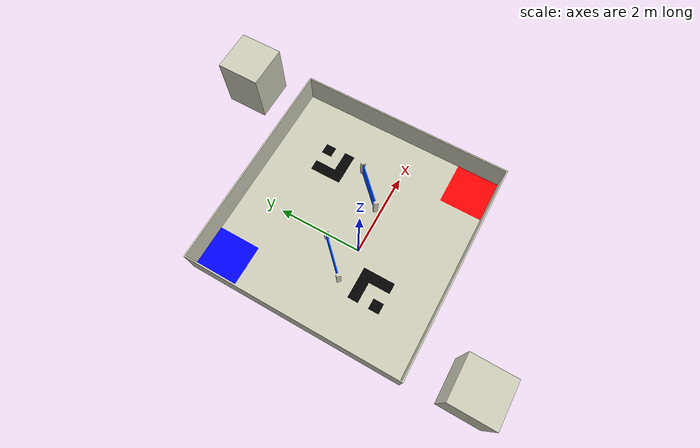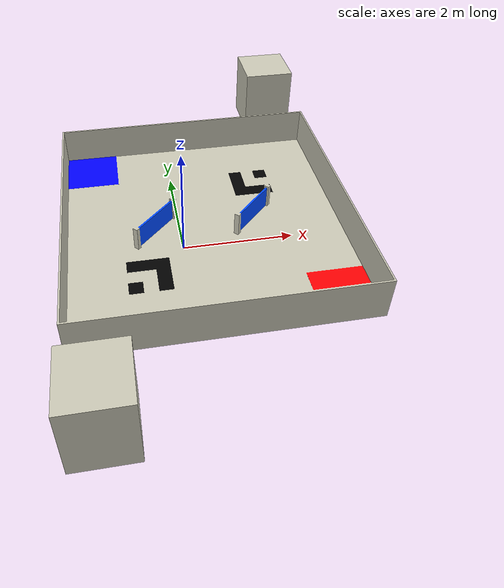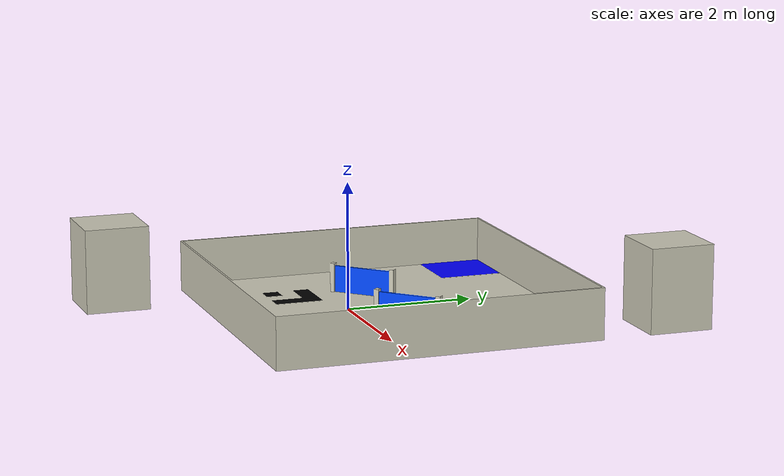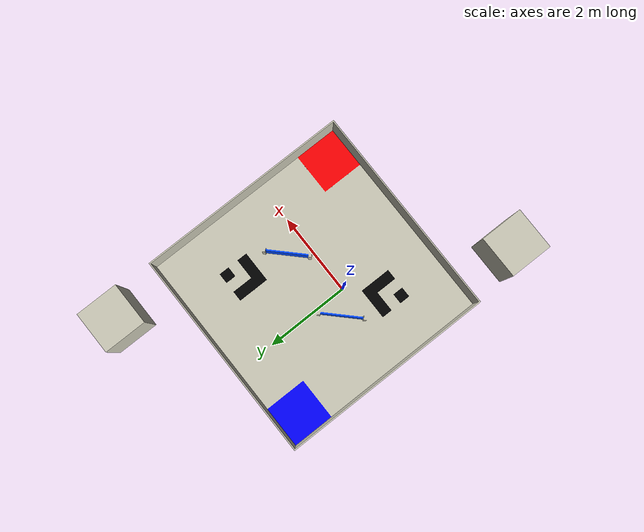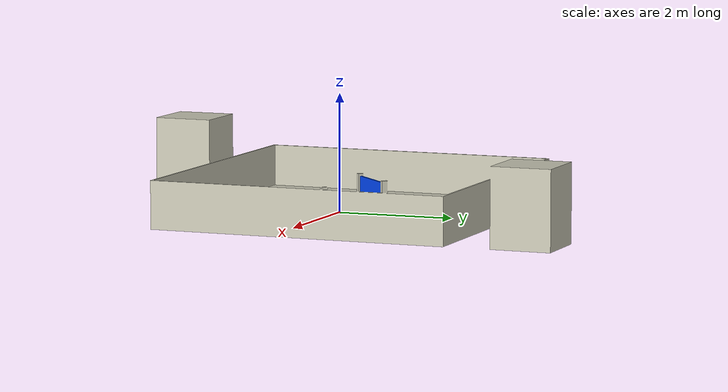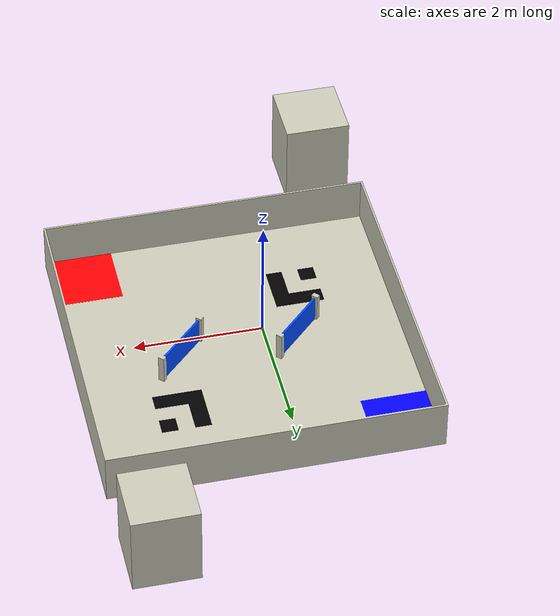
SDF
<?xml version="1.0" ?>
<sdf version="1.5">
  <model name="auto_world">
    <static>true</static>
    <link name="link">

<inertial>
        <mass>1000</mass>
        <pose>0 0 0 0 0 0</pose>
        <inertia>
          <ixx>0.327090833</ixx>
          <ixy>0</ixy>
          <ixz>0</ixz>
          <iyy>1.374166667</iyy>
          <iyz>0</iyz>
          <izz>1.641090833</izz>
        </inertia>
      </inertial>

      <!-- Visual of the boundary walls -->
      <visual name="auto_world">
        <pose>0 0 0 0 0 0</pose>
        <geometry>
          <mesh>
            <uri>model://auto_world/meshes/auto_world.dae</uri>
          </mesh>
        </geometry>
      </visual>

       <collision name="platform">
        <pose>0 0 0 0 0 0</pose>
        <geometry>
          <mesh>
            <uri>model://auto_world/meshes/auto_world.dae</uri>
          </mesh>
        </geometry>
      </collision>

    </link>
  </model>
</sdf>
